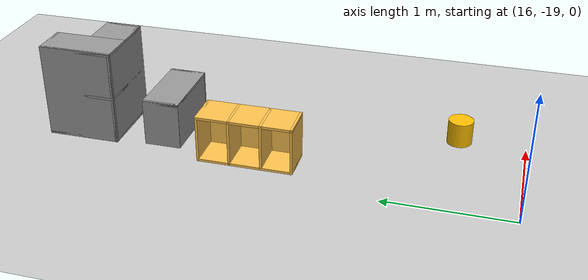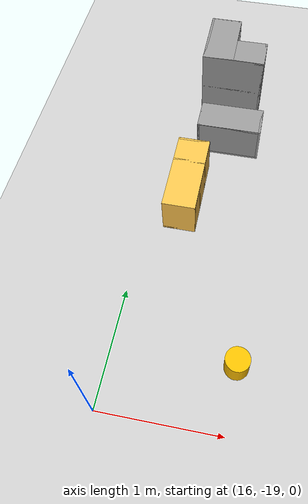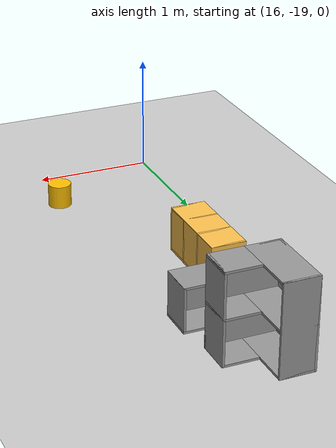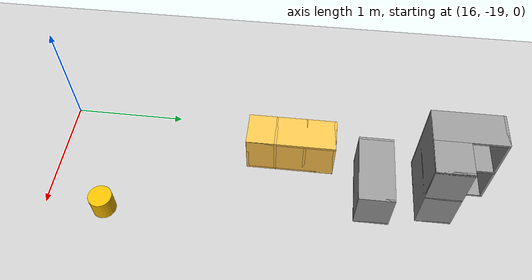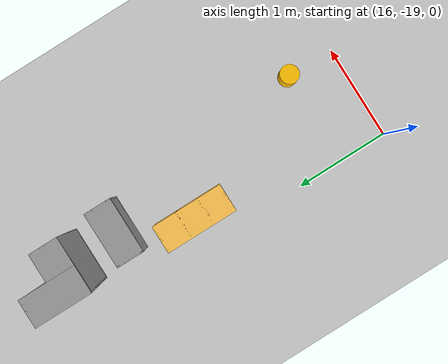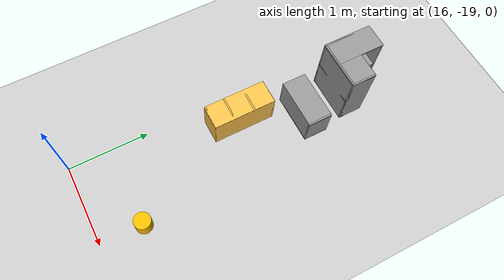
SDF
<sdf version="1.7">
 <world name="default">
  <model name="ground_plane">
   <static>1</static>
   <link name="link">
    <collision name="collision">
     <geometry><plane><normal>0 0 1</normal><size>100 100</size></plane></geometry>
     <surface><friction><ode><mu>100</mu><mu2>50</mu2></ode></friction></surface>
    </collision>
    <visual name="visual">
     <cast_shadows>0</cast_shadows>
     <geometry><plane><normal>0 0 1</normal><size>100 100</size></plane></geometry>
     <material>
      <script><uri>file://media/materials/scripts/gazebo.material</uri><name>Gazebo/Grey</name></script>
     </material>
    </visual>
   </link>
  </model>
  <model name="cylinder_yo_clone_1">
   <link name="link_0">
    <pose>0 0 0.1 0 -0 0</pose>
    <inertial>
     <mass>1</mass>
     <inertia><ixx>0.145833</ixx><ixy>0</ixy><ixz>0</ixz><iyy>0.145833</iyy><iyz>0</iyz><izz>0.125</izz></inertia>
    </inertial>
    <visual name="visual">
     <geometry><cylinder><radius>0.1</radius><length>0.2</length></cylinder></geometry>
     <material>
      <lighting>1</lighting>
      <script><uri>file://media/materials/scripts/gazebo.material</uri><name>Gazebo/Grey</name></script>
      <ambient>1 0.749 0 1</ambient>
      <diffuse>1 0.749 0 1</diffuse>
      <specular>0 0 0 1</specular>
      <emissive>0 0 0 1</emissive>
      <shader type="vertex"><normal_map>__default__</normal_map></shader>
     </material>
    </visual>
    <collision name="collision">
     <geometry><cylinder><radius>0.1</radius><length>0.2</length></cylinder></geometry>
     <surface>
      <friction>
       <ode><mu>1</mu><mu2>1</mu2><fdir1>0 0 0</fdir1><slip1>0</slip1><slip2>0</slip2></ode>
       <torsional>
        <coefficient>1</coefficient>
        <patch_radius>0</patch_radius>
        <surface_radius>0</surface_radius>
        <use_patch_radius>1</use_patch_radius>
        <ode><slip>0</slip></ode>
       </torsional>
      </friction>
      <bounce><restitution_coefficient>0</restitution_coefficient><threshold>1e+06</threshold></bounce>
      <contact>
       <collide_without_contact>0</collide_without_contact>
       <collide_without_contact_bitmask>1</collide_without_contact_bitmask>
       <collide_bitmask>1</collide_bitmask>
       <ode>
        <soft_cfm>0</soft_cfm>
        <soft_erp>0.2</soft_erp>
        <kp>1e+13</kp>
        <kd>1</kd>
        <max_vel>0.01</max_vel>
        <min_depth>0</min_depth>
       </ode>
       <bullet>
        <split_impulse>1</split_impulse>
        <split_impulse_penetration_threshold>-0.01</split_impulse_penetration_threshold>
        <soft_cfm>0</soft_cfm>
        <soft_erp>0.2</soft_erp>
        <kp>1e+13</kp>
        <kd>1</kd>
       </bullet>
      </contact>
     </surface>
    </collision>
   </link>
   <static>1</static>
   <pose>17.0109 -18.4756 0 0 -0 0</pose>
  </model>
  <model name="Wall_Cabinet_Coin_24x30W">
   <link name="Wall_10">
    <pose>0.286 -0.148 0.384 0 -0 0</pose>
    <inertial>
     <mass>2.1259</mass>
     <inertia><ixx>0.0158</ixx><iyy>0.1202</iyy><izz>0.1046</izz><ixy>0</ixy><ixz>0</ixz><iyz>0</iyz></inertia>
    </inertial>
    <collision name="Wall_10_Collision"><geometry><box><size>0.02 0.296 0.768</size></box></geometry></collision>
    <visual name="Wall_10_Visual">
     <geometry><box><size>0.02 0.296 0.768</size></box></geometry>
     <material>
      <script><uri>file://media/materials/scripts/gazebo.material</uri><name>Gazebo/Grey</name></script>
      <ambient>1 1 1 1</ambient>
     </material>
    </visual>
   </link>
   <joint name="10_16" type="fixed">
    <pose>0 0 -0.374 0 -0 0</pose>
    <parent>Wall_16</parent>
    <child>Wall_10</child>
    <axis><xyz>1 0 0</xyz><limit><lower>-1e+16</lower><upper>1e+16</upper></limit></axis>
   </joint>
   <joint name="10_14" type="fixed">
    <parent>Wall_14</parent>
    <child>Wall_10</child>
    <axis><xyz>1 0 0</xyz><limit><lower>-1e+16</lower><upper>1e+16</upper></limit></axis>
   </joint>
   <joint name="10_12" type="fixed">
    <pose>0 0 0.374 0 -0 0</pose>
    <parent>Wall_12</parent>
    <child>Wall_10</child>
    <axis><xyz>1 0 0</xyz><limit><lower>-1e+16</lower><upper>1e+16</upper></limit></axis>
   </joint>
   <joint name="10_29" type="fixed">
    <pose>0 -0.148 0 0 -0 0</pose>
    <parent>Wall_29</parent>
    <child>Wall_10</child>
    <axis><xyz>1 0 0</xyz><limit><lower>-1e+16</lower><upper>1e+16</upper></limit></axis>
   </joint>
   <link name="Wall_12">
    <pose>0.148 -0.148 0.758 0 -0 0</pose>
    <inertial>
     <mass>0.8802</mass>
     <inertia><ixx>0.0065</ixx><iyy>0.0139</iyy><izz>0.0074</izz><ixy>0</ixy><ixz>0</ixz><iyz>0</iyz></inertia>
    </inertial>
    <collision name="Wall_12_Collision"><geometry><box><size>0.296 0.296 0.02</size></box></geometry></collision>
    <visual name="Wall_12_Visual">
     <geometry><box><size>0.296 0.296 0.02</size></box></geometry>
     <material>
      <script><uri>file://media/materials/scripts/gazebo.material</uri><name>Gazebo/Grey</name></script>
      <ambient>1 1 1 1</ambient>
     </material>
    </visual>
   </link>
   <joint name="12_29" type="fixed">
    <pose>0 -0.148 0 0 -0 0</pose>
    <parent>Wall_29</parent>
    <child>Wall_12</child>
    <axis><xyz>0 0 1</xyz><limit><lower>-1e+16</lower><upper>1e+16</upper></limit></axis>
   </joint>
   <link name="Wall_14">
    <pose>0.148 -0.148 0.384 0 -0 0</pose>
    <inertial>
     <mass>0.8802</mass>
     <inertia><ixx>0.0065</ixx><iyy>0.0139</iyy><izz>0.0074</izz><ixy>0</ixy><ixz>0</ixz><iyz>0</iyz></inertia>
    </inertial>
    <collision name="Wall_14_Collision"><geometry><box><size>0.296 0.296 0.02</size></box></geometry></collision>
    <visual name="Wall_14_Visual">
     <geometry><box><size>0.296 0.296 0.02</size></box></geometry>
     <material>
      <script><uri>file://media/materials/scripts/gazebo.material</uri><name>Gazebo/Grey</name></script>
      <ambient>1 1 1 1</ambient>
     </material>
    </visual>
   </link>
   <joint name="14_29" type="fixed">
    <pose>0 -0.148 0 0 -0 0</pose>
    <parent>Wall_29</parent>
    <child>Wall_14</child>
    <axis><xyz>0 1 0</xyz><limit><lower>-1e+16</lower><upper>1e+16</upper></limit></axis>
   </joint>
   <link name="Wall_16">
    <pose>0.148 -0.148 0.01 0 -0 0</pose>
    <inertial>
     <mass>0.8802</mass>
     <inertia><ixx>0.0065</ixx><iyy>0.0139</iyy><izz>0.0074</izz><ixy>0</ixy><ixz>0</ixz><iyz>0</iyz></inertia>
    </inertial>
    <collision name="Wall_16_Collision"><geometry><box><size>0.296 0.296 0.02</size></box></geometry></collision>
    <visual name="Wall_16_Visual">
     <geometry><box><size>0.296 0.296 0.02</size></box></geometry>
     <material>
      <script><uri>file://media/materials/scripts/gazebo.material</uri><name>Gazebo/Grey</name></script>
      <ambient>1 1 1 1</ambient>
     </material>
    </visual>
   </link>
   <joint name="16_29" type="fixed">
    <pose>0 -0.148 0 0 -0 0</pose>
    <parent>Wall_29</parent>
    <child>Wall_16</child>
    <axis><xyz>0 1 0</xyz><limit><lower>-1e+16</lower><upper>1e+16</upper></limit></axis>
   </joint>
   <link name="Wall_18">
    <pose>-0.148 0 0.01 0 -0 0</pose>
    <inertial>
     <mass>1.6525</mass>
     <inertia><ixx>0.0491</ixx><iyy>0.0613</iyy><izz>0.0123</izz><ixy>0</ixy><ixz>0</ixz><iyz>0</iyz></inertia>
    </inertial>
    <collision name="Wall_18_Collision"><geometry><box><size>0.296 0.592 0.02</size></box></geometry></collision>
    <visual name="Wall_18_Visual">
     <geometry><box><size>0.296 0.592 0.02</size></box></geometry>
     <material>
      <script><uri>file://media/materials/scripts/gazebo.material</uri><name>Gazebo/Grey</name></script>
      <ambient>1 1 1 1</ambient>
     </material>
    </visual>
   </link>
   <joint name="18_16" type="fixed">
    <pose>0.148 -0.148 0 0 -0 0</pose>
    <parent>Wall_16</parent>
    <child>Wall_18</child>
    <axis><xyz>1 0 0</xyz><limit><lower>-1e+16</lower><upper>1e+16</upper></limit></axis>
   </joint>
   <joint name="18_29" type="fixed">
    <pose>0 -0.296 0 0 -0 0</pose>
    <parent>Wall_29</parent>
    <child>Wall_18</child>
    <axis><xyz>0 1 0</xyz><limit><lower>-1e+16</lower><upper>1e+16</upper></limit></axis>
   </joint>
   <joint name="18_27" type="fixed">
    <pose>-0.148 0 0 0 -0 0</pose>
    <parent>Wall_27</parent>
    <child>Wall_18</child>
    <axis><xyz>1 0 0</xyz><limit><lower>-1e+16</lower><upper>1e+16</upper></limit></axis>
   </joint>
   <joint name="18_30" type="fixed">
    <pose>0 0.296 0 0 -0 0</pose>
    <parent>Wall_30</parent>
    <child>Wall_18</child>
    <axis><xyz>0 1 0</xyz><limit><lower>-1e+16</lower><upper>1e+16</upper></limit></axis>
   </joint>
   <link name="Wall_20">
    <pose>-0.148 0 0.384 0 -0 0</pose>
    <inertial>
     <mass>1.6525</mass>
     <inertia><ixx>0.0491</ixx><iyy>0.0613</iyy><izz>0.0123</izz><ixy>0</ixy><ixz>0</ixz><iyz>0</iyz></inertia>
    </inertial>
    <collision name="Wall_20_Collision"><geometry><box><size>0.296 0.592 0.02</size></box></geometry></collision>
    <visual name="Wall_20_Visual">
     <geometry><box><size>0.296 0.592 0.02</size></box></geometry>
     <material>
      <script><uri>file://media/materials/scripts/gazebo.material</uri><name>Gazebo/Grey</name></script>
      <ambient>1 1 1 1</ambient>
     </material>
    </visual>
   </link>
   <joint name="20_14" type="fixed">
    <pose>0.148 -0.148 0 0 -0 0</pose>
    <parent>Wall_14</parent>
    <child>Wall_20</child>
    <axis><xyz>1 0 0</xyz><limit><lower>-1e+16</lower><upper>1e+16</upper></limit></axis>
   </joint>
   <joint name="20_29" type="fixed">
    <pose>0 -0.296 0 0 -0 0</pose>
    <parent>Wall_29</parent>
    <child>Wall_20</child>
    <axis><xyz>0 1 0</xyz><limit><lower>-1e+16</lower><upper>1e+16</upper></limit></axis>
   </joint>
   <joint name="20_27" type="fixed">
    <pose>-0.148 0 0 0 -0 0</pose>
    <parent>Wall_27</parent>
    <child>Wall_20</child>
    <axis><xyz>1 0 0</xyz><limit><lower>-1e+16</lower><upper>1e+16</upper></limit></axis>
   </joint>
   <joint name="20_30" type="fixed">
    <pose>0 0.296 0 0 -0 0</pose>
    <parent>Wall_30</parent>
    <child>Wall_20</child>
    <axis><xyz>0 1 0</xyz><limit><lower>-1e+16</lower><upper>1e+16</upper></limit></axis>
   </joint>
   <link name="Wall_22">
    <pose>-0.148 0 0.758 0 -0 0</pose>
    <inertial>
     <mass>1.6525</mass>
     <inertia><ixx>0.0491</ixx><iyy>0.0613</iyy><izz>0.0123</izz><ixy>0</ixy><ixz>0</ixz><iyz>0</iyz></inertia>
    </inertial>
    <collision name="Wall_22_Collision"><geometry><box><size>0.296 0.592 0.02</size></box></geometry></collision>
    <visual name="Wall_22_Visual">
     <geometry><box><size>0.296 0.592 0.02</size></box></geometry>
     <material>
      <script><uri>file://media/materials/scripts/gazebo.material</uri><name>Gazebo/Grey</name></script>
      <ambient>1 1 1 1</ambient>
     </material>
    </visual>
   </link>
   <joint name="22_12" type="fixed">
    <pose>0.148 -0.148 0 0 -0 0</pose>
    <parent>Wall_12</parent>
    <child>Wall_22</child>
    <axis><xyz>1 0 0</xyz><limit><lower>-1e+16</lower><upper>1e+16</upper></limit></axis>
   </joint>
   <joint name="22_29" type="fixed">
    <pose>0 -0.296 0 0 -0 0</pose>
    <parent>Wall_29</parent>
    <child>Wall_22</child>
    <axis><xyz>0 1 0</xyz><limit><lower>-1e+16</lower><upper>1e+16</upper></limit></axis>
   </joint>
   <joint name="22_27" type="fixed">
    <pose>-0.148 0 0 0 -0 0</pose>
    <parent>Wall_27</parent>
    <child>Wall_22</child>
    <axis><xyz>1 0 0</xyz><limit><lower>-1e+16</lower><upper>1e+16</upper></limit></axis>
   </joint>
   <joint name="22_30" type="fixed">
    <pose>0 0.296 0 0 -0 0</pose>
    <parent>Wall_30</parent>
    <child>Wall_22</child>
    <axis><xyz>0 1 0</xyz><limit><lower>-1e+16</lower><upper>1e+16</upper></limit></axis>
   </joint>
   <link name="Wall_27">
    <pose>-0.286 0 0.384 0 -0 0</pose>
    <inertial>
     <mass>4.2589</mass>
     <inertia><ixx>0.1266</ixx><iyy>0.3358</iyy><izz>0.2095</izz><ixy>0</ixy><ixz>0</ixz><iyz>0</iyz></inertia>
    </inertial>
    <collision name="Wall_27_Collision"><geometry><box><size>0.02 0.592 0.768</size></box></geometry></collision>
    <visual name="Wall_27_Visual">
     <geometry><box><size>0.02 0.592 0.768</size></box></geometry>
     <material>
      <script><uri>file://media/materials/scripts/gazebo.material</uri><name>Gazebo/Grey</name></script>
      <ambient>1 1 1 1</ambient>
     </material>
    </visual>
   </link>
   <joint name="27_30" type="fixed">
    <pose>0 0.296 0 0 -0 0</pose>
    <parent>Wall_30</parent>
    <child>Wall_27</child>
    <axis><xyz>0 1 0</xyz><limit><lower>-1e+16</lower><upper>1e+16</upper></limit></axis>
   </joint>
   <link name="Wall_29">
    <pose>0 -0.286 0.384 0 -0 0</pose>
    <inertial>
     <mass>4.3176</mass>
     <inertia><ixx>0.134</ixx><iyy>0.2091</iyy><izz>0.3428</izz><ixy>0</ixy><ixz>0</ixz><iyz>0</iyz></inertia>
    </inertial>
    <collision name="Wall_29_Collision"><geometry><box><size>0.592 0.02 0.768</size></box></geometry></collision>
    <visual name="Wall_29_Visual">
     <geometry><box><size>0.592 0.02 0.768</size></box></geometry>
     <material>
      <script><uri>file://media/materials/scripts/gazebo.material</uri><name>Gazebo/Grey</name></script>
      <ambient>1 1 1 1</ambient>
     </material>
    </visual>
   </link>
   <link name="Wall_30">
    <pose>-0.148 0.286 0.384 0 -0 0</pose>
    <inertial>
     <mass>2.1093</mass>
     <inertia><ixx>0.1021</ixx><iyy>0.0157</iyy><izz>0.1177</izz><ixy>0</ixy><ixz>0</ixz><iyz>0</iyz></inertia>
    </inertial>
    <collision name="Wall_30_Collision"><geometry><box><size>0.296 0.02 0.768</size></box></geometry></collision>
    <visual name="Wall_30_Visual">
     <geometry><box><size>0.296 0.02 0.768</size></box></geometry>
     <material>
      <script><uri>file://media/materials/scripts/gazebo.material</uri><name>Gazebo/Grey</name></script>
      <ambient>1 1 1 1</ambient>
     </material>
    </visual>
   </link>
   <static>1</static>
   <pose>16.5584 -15.54 0 0 -0 0</pose>
  </model>
  <model name="Wall_Cabinet_24x15W">
   <link name="Wall_41">
    <pose>0 0 0.01 0 -0 0</pose>
    <inertial>
     <mass>1.4983</mass>
     <inertia><ixx>0.011</ixx><iyy>0.0571</iyy><izz>0.0462</izz><ixy>0</ixy><ixz>0</ixz><iyz>0</iyz></inertia>
    </inertial>
    <collision name="Wall_41_Collision"><geometry><box><size>0.608 0.296 0.02</size></box></geometry></collision>
    <visual name="Wall_41_Visual">
     <geometry><box><size>0.608 0.296 0.02</size></box></geometry>
     <material>
      <script><uri>file://media/materials/scripts/gazebo.material</uri><name>Gazebo/Grey</name></script>
      <ambient>1 1 1 1</ambient>
     </material>
    </visual>
    <pose>0.000184 0.181953 0 0 -0 0</pose>
   </link>
   <joint name="41_43" type="fixed">
    <pose>-0.304 0 0 0 -0 0</pose>
    <parent>Wall_43</parent>
    <child>Wall_41</child>
    <axis><xyz>0 0 1</xyz><limit><lower>-1e+16</lower><upper>1e+16</upper></limit></axis>
   </joint>
   <joint name="41_45" type="fixed">
    <pose>0.304 0 0 0 -0 0</pose>
    <parent>Wall_45</parent>
    <child>Wall_41</child>
    <axis><xyz>0 0 1</xyz><limit><lower>-1e+16</lower><upper>1e+16</upper></limit></axis>
   </joint>
   <joint name="41_49" type="fixed">
    <pose>0 -0.148 0 0 -0 0</pose>
    <parent>Wall_49</parent>
    <child>Wall_41</child>
    <axis><xyz>0 0 1</xyz><limit><lower>-1e+16</lower><upper>1e+16</upper></limit></axis>
   </joint>
   <link name="Wall_43">
    <pose>-0.294 0 0.192 0 -0 0</pose>
    <inertial>
     <mass>0.9463</mass>
     <inertia><ixx>0.0069</ixx><iyy>0.0185</iyy><izz>0.0117</izz><ixy>0</ixy><ixz>0</ixz><iyz>0</iyz></inertia>
    </inertial>
    <collision name="Wall_43_Collision"><geometry><box><size>0.02 0.296 0.384</size></box></geometry></collision>
    <visual name="Wall_43_Visual">
     <geometry><box><size>0.02 0.296 0.384</size></box></geometry>
     <material>
      <script><uri>file://media/materials/scripts/gazebo.material</uri><name>Gazebo/Grey</name></script>
      <ambient>1 1 1 1</ambient>
     </material>
    </visual>
   </link>
   <link name="Wall_45">
    <pose>0.294 0 0.192 0 -0 0</pose>
    <inertial>
     <mass>0.9463</mass>
     <inertia><ixx>0.0069</ixx><iyy>0.0185</iyy><izz>0.0117</izz><ixy>0</ixy><ixz>0</ixz><iyz>0</iyz></inertia>
    </inertial>
    <collision name="Wall_45_Collision"><geometry><box><size>0.02 0.296 0.384</size></box></geometry></collision>
    <visual name="Wall_45_Visual">
     <geometry><box><size>0.02 0.296 0.384</size></box></geometry>
     <material>
      <script><uri>file://media/materials/scripts/gazebo.material</uri><name>Gazebo/Grey</name></script>
      <ambient>1 1 1 1</ambient>
     </material>
    </visual>
   </link>
   <link name="Wall_47">
    <pose>0 0 0.374 0 -0 0</pose>
    <inertial>
     <mass>1.4983</mass>
     <inertia><ixx>0.011</ixx><iyy>0.0571</iyy><izz>0.0462</izz><ixy>0</ixy><ixz>0</ixz><iyz>0</iyz></inertia>
    </inertial>
    <collision name="Wall_47_Collision"><geometry><box><size>0.608 0.296 0.02</size></box></geometry></collision>
    <visual name="Wall_47_Visual">
     <geometry><box><size>0.608 0.296 0.02</size></box></geometry>
     <material>
      <script><uri>file://media/materials/scripts/gazebo.material</uri><name>Gazebo/Grey</name></script>
      <ambient>1 1 1 1</ambient>
     </material>
    </visual>
   </link>
   <joint name="47_43" type="fixed">
    <pose>-0.304 0 0 0 -0 0</pose>
    <parent>Wall_43</parent>
    <child>Wall_47</child>
    <axis><xyz>0 0 1</xyz><limit><lower>-1e+16</lower><upper>1e+16</upper></limit></axis>
   </joint>
   <joint name="47_45" type="fixed">
    <pose>0.304 0 0 0 -0 0</pose>
    <parent>Wall_45</parent>
    <child>Wall_47</child>
    <axis><xyz>0 0 1</xyz><limit><lower>-1e+16</lower><upper>1e+16</upper></limit></axis>
   </joint>
   <joint name="47_49" type="fixed">
    <pose>0 -0.148 0 0 -0 0</pose>
    <parent>Wall_49</parent>
    <child>Wall_47</child>
    <axis><xyz>0 0 1</xyz><limit><lower>-1e+16</lower><upper>1e+16</upper></limit></axis>
   </joint>
   <link name="Wall_49">
    <pose>0 -0.138 0.19 0 -0 0</pose>
    <inertial>
     <mass>1.9108</mass>
     <inertia><ixx>0.0231</ixx><iyy>0.0582</iyy><izz>0.0811</izz><ixy>0</ixy><ixz>0</ixz><iyz>0</iyz></inertia>
    </inertial>
    <collision name="Wall_49_Collision"><geometry><box><size>0.604 0.02 0.38</size></box></geometry></collision>
    <visual name="Wall_49_Visual">
     <geometry><box><size>0.604 0.02 0.38</size></box></geometry>
     <material>
      <script><uri>file://media/materials/scripts/gazebo.material</uri><name>Gazebo/Grey</name></script>
      <ambient>1 1 1 1</ambient>
     </material>
    </visual>
   </link>
   <joint name="49_43" type="fixed">
    <pose>-0.302 0 0 0 -0 0</pose>
    <parent>Wall_41</parent>
    <child>Wall_49</child>
    <axis><xyz>0 1 0</xyz><limit><lower>-1e+16</lower><upper>1e+16</upper></limit></axis>
   </joint>
   <joint name="49_45" type="fixed">
    <pose>0.302 0 0 0 -0 0</pose>
    <parent>Wall_45</parent>
    <child>Wall_49</child>
    <axis><xyz>0 1 0</xyz><limit><lower>-1e+16</lower><upper>1e+16</upper></limit></axis>
   </joint>
   <static>1</static>
   <pose>16.6117 -16.2075 0 0 -0 0</pose>
  </model>
  <model name="Wall_Cabinet_15x30">
   <pose>16.3162 -16.9312 0 0 -0 0</pose>
   <link name="Wall_0">
    <pose>0 0.374 0.192 0 -0 0</pose>
    <inertial>
     <mass>0.9882</mass>
     <inertia><ixx>0.0072</ixx><iyy>0.0194</iyy><izz>0.0122</izz><ixy>0</ixy><ixz>0</ixz><iyz>0</iyz></inertia>
    </inertial>
    <collision name="Wall_0_Collision"><geometry><box><size>0.296 0.02 0.384</size></box></geometry></collision>
    <visual name="Wall_0_Visual">
     <geometry><box><size>0.296 0.02 0.384</size></box></geometry>
     <material>
      <script><uri>file://media/materials/scripts/gazebo.material</uri><name>Gazebo/Grey</name></script>
      <ambient>1 0.764706 0.305882 1</ambient>
     </material>
    </visual>
   </link>
   <joint name="0_2" type="fixed">
    <pose>0 0 0.192 0 -0 0</pose>
    <parent>Wall_2</parent>
    <child>Wall_0</child>
    <axis><xyz>0 0 1</xyz><limit><lower>-1e+16</lower><upper>1e+16</upper></limit></axis>
   </joint>
   <joint name="0_4" type="fixed">
    <pose>0 0 -0.192 0 -0 0</pose>
    <parent>Wall_4</parent>
    <child>Wall_0</child>
    <axis><xyz>0 0 1</xyz><limit><lower>-1e+16</lower><upper>1e+16</upper></limit></axis>
   </joint>
   <joint name="0_15" type="fixed">
    <pose>0.148 0 0 0 -0 0</pose>
    <parent>Wall_15</parent>
    <child>Wall_0</child>
    <axis><xyz>1 0 0</xyz><limit><lower>-1e+16</lower><upper>1e+16</upper></limit></axis>
   </joint>
   <link name="Wall_11">
    <pose>0 -0.132768 0.192 0 -0 0</pose>
    <inertial>
     <mass>0.9882</mass>
     <inertia><ixx>0.0072</ixx><iyy>0.0194</iyy><izz>0.0122</izz><ixy>0</ixy><ixz>0</ixz><iyz>0</iyz></inertia>
    </inertial>
    <collision name="Wall_11_Collision"><geometry><box><size>0.296 0.02 0.384</size></box></geometry></collision>
    <visual name="Wall_11_Visual">
     <geometry><box><size>0.296 0.02 0.384</size></box></geometry>
     <material>
      <script><uri>file://media/materials/scripts/gazebo.material</uri><name>Gazebo/Grey</name></script>
      <ambient>1 0.764706 0.305882 1</ambient>
     </material>
    </visual>
   </link>
   <joint name="11_2" type="fixed">
    <pose>0 0 0.192 0 -0 0</pose>
    <parent>Wall_2</parent>
    <child>Wall_11</child>
    <axis><xyz>0 0 1</xyz><limit><lower>-1e+16</lower><upper>1e+16</upper></limit></axis>
   </joint>
   <joint name="11_4" type="fixed">
    <pose>0 0 -0.192 0 -0 0</pose>
    <parent>Wall_4</parent>
    <child>Wall_11</child>
    <axis><xyz>0 0 1</xyz><limit><lower>-1e+16</lower><upper>1e+16</upper></limit></axis>
   </joint>
   <joint name="11_15" type="fixed">
    <pose>0.148 0 0 0 -0 0</pose>
    <parent>Wall_15</parent>
    <child>Wall_11</child>
    <axis><xyz>1 0 0</xyz><limit><lower>-1e+16</lower><upper>1e+16</upper></limit></axis>
   </joint>
   <link name="Wall_15">
    <pose>0.138 0 0.19 0 -0 0</pose>
    <inertial>
     <mass>2.5241</mass>
     <inertia><ixx>0.0305</ixx><iyy>0.1229</iyy><izz>0.1532</izz><ixy>0</ixy><ixz>0</ixz><iyz>0</iyz></inertia>
    </inertial>
    <collision name="Wall_15_Collision"><geometry><box><size>0.02 0.764 0.38</size></box></geometry></collision>
    <visual name="Wall_15_Visual">
     <geometry><box><size>0.02 0.764 0.38</size></box></geometry>
     <material>
      <script><uri>file://media/materials/scripts/gazebo.material</uri><name>Gazebo/Grey</name></script>
      <ambient>1 0.764706 0.305882 1</ambient>
     </material>
    </visual>
   </link>
   <joint name="15_2" type="fixed">
    <pose>0 0 0.19 0 -0 0</pose>
    <parent>Wall_2</parent>
    <child>Wall_15</child>
    <axis><xyz>0 0 1</xyz><limit><lower>-1e+16</lower><upper>1e+16</upper></limit></axis>
   </joint>
   <joint name="15_4" type="fixed">
    <pose>0 0 -0.19 0 -0 0</pose>
    <parent>Wall_4</parent>
    <child>Wall_15</child>
    <axis><xyz>0 0 1</xyz><limit><lower>-1e+16</lower><upper>1e+16</upper></limit></axis>
   </joint>
   <link name="Wall_2">
    <pose>0 0 0.374 0 -0 0</pose>
    <inertial>
     <mass>1.9765</mass>
     <inertia><ixx>0.0145</ixx><iyy>0.1116</iyy><izz>0.0972</izz><ixy>0</ixy><ixz>0</ixz><iyz>0</iyz></inertia>
    </inertial>
    <collision name="Wall_2_Collision"><geometry><box><size>0.296 0.768 0.02</size></box></geometry></collision>
    <visual name="Wall_2_Visual">
     <geometry><box><size>0.296 0.768 0.02</size></box></geometry>
     <material>
      <script><uri>file://media/materials/scripts/gazebo.material</uri><name>Gazebo/Grey</name></script>
      <ambient>1 0.764706 0.305882 1</ambient>
     </material>
    </visual>
   </link>
   <link name="Wall_4">
    <pose>0 0 0.01 0 -0 0</pose>
    <inertial>
     <mass>1.9765</mass>
     <inertia><ixx>0.0145</ixx><iyy>0.1116</iyy><izz>0.0972</izz><ixy>0</ixy><ixz>0</ixz><iyz>0</iyz></inertia>
    </inertial>
    <collision name="Wall_4_Collision"><geometry><box><size>0.296 0.768 0.02</size></box></geometry></collision>
    <visual name="Wall_4_Visual">
     <geometry><box><size>0.296 0.768 0.02</size></box></geometry>
     <material>
      <script><uri>file://media/materials/scripts/gazebo.material</uri><name>Gazebo/Grey</name></script>
      <ambient>1 0.764706 0.305882 1</ambient>
     </material>
    </visual>
    <pose>-0.181124 0 0 0 0 -1.5708</pose>
   </link>
   <link name="Wall_6">
    <pose>0 -0.374 0.192 0 -0 0</pose>
    <inertial>
     <mass>0.9882</mass>
     <inertia><ixx>0.0072</ixx><iyy>0.0194</iyy><izz>0.0122</izz><ixy>0</ixy><ixz>0</ixz><iyz>0</iyz></inertia>
    </inertial>
    <collision name="Wall_6_Collision"><geometry><box><size>0.296 0.02 0.384</size></box></geometry></collision>
    <visual name="Wall_6_Visual">
     <geometry><box><size>0.296 0.02 0.384</size></box></geometry>
     <material>
      <script><uri>file://media/materials/scripts/gazebo.material</uri><name>Gazebo/Grey</name></script>
      <ambient>1 0.764706 0.305882 1</ambient>
     </material>
    </visual>
   </link>
   <joint name="6_2" type="fixed">
    <pose>0 0 0.192 0 -0 0</pose>
    <parent>Wall_2</parent>
    <child>Wall_6</child>
    <axis><xyz>0 0 1</xyz><limit><lower>-1e+16</lower><upper>1e+16</upper></limit></axis>
   </joint>
   <joint name="6_4" type="fixed">
    <pose>0 0 -0.192 0 -0 0</pose>
    <parent>Wall_4</parent>
    <child>Wall_6</child>
    <axis><xyz>0 0 1</xyz><limit><lower>-1e+16</lower><upper>1e+16</upper></limit></axis>
   </joint>
   <joint name="6_15" type="fixed">
    <pose>0.148 0 0 0 -0 0</pose>
    <parent>Wall_15</parent>
    <child>Wall_6</child>
    <axis><xyz>1 0 0</xyz><limit><lower>-1e+16</lower><upper>1e+16</upper></limit></axis>
   </joint>
   <link name="Wall_8">
    <pose>0 0.120833 0.192 0 -0 0</pose>
    <inertial>
     <mass>0.9882</mass>
     <inertia><ixx>0.0072</ixx><iyy>0.0194</iyy><izz>0.0122</izz><ixy>0</ixy><ixz>0</ixz><iyz>0</iyz></inertia>
    </inertial>
    <collision name="Wall_8_Collision"><geometry><box><size>0.296 0.02 0.384</size></box></geometry></collision>
    <visual name="Wall_8_Visual">
     <geometry><box><size>0.296 0.02 0.384</size></box></geometry>
     <material>
      <script><uri>file://media/materials/scripts/gazebo.material</uri><name>Gazebo/Grey</name></script>
      <ambient>1 0.764706 0.305882 1</ambient>
     </material>
    </visual>
   </link>
   <joint name="8_2" type="fixed">
    <pose>0 0 0.192 0 -0 0</pose>
    <parent>Wall_2</parent>
    <child>Wall_8</child>
    <axis><xyz>0 0 1</xyz><limit><lower>-1e+16</lower><upper>1e+16</upper></limit></axis>
   </joint>
   <joint name="8_4" type="fixed">
    <pose>0 0 -0.192 0 -0 0</pose>
    <parent>Wall_4</parent>
    <child>Wall_8</child>
    <axis><xyz>0 0 1</xyz><limit><lower>-1e+16</lower><upper>1e+16</upper></limit></axis>
   </joint>
   <joint name="8_15" type="fixed">
    <pose>0.148 0 0 0 -0 0</pose>
    <parent>Wall_15</parent>
    <child>Wall_8</child>
    <axis><xyz>1 0 0</xyz><limit><lower>-1e+16</lower><upper>1e+16</upper></limit></axis>
   </joint>
   <static>1</static>
  </model>
 </world>
</sdf>
